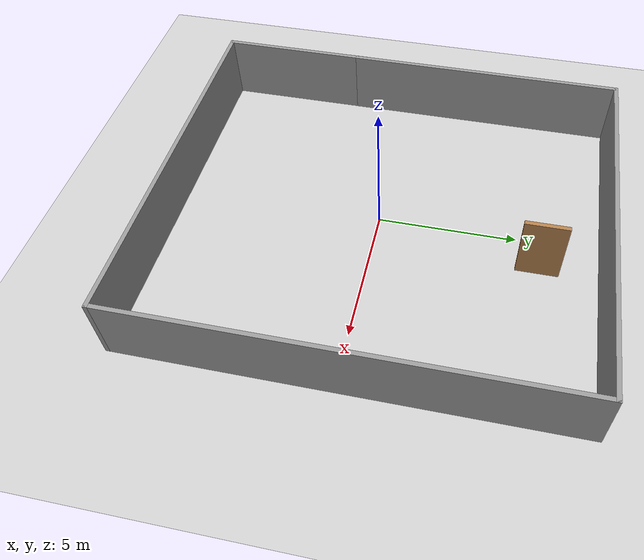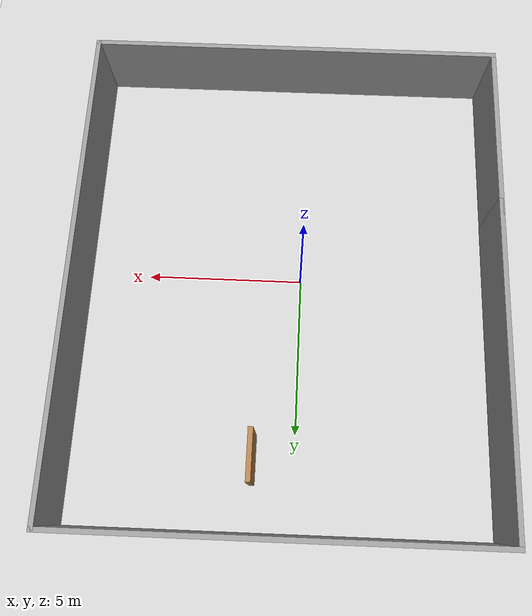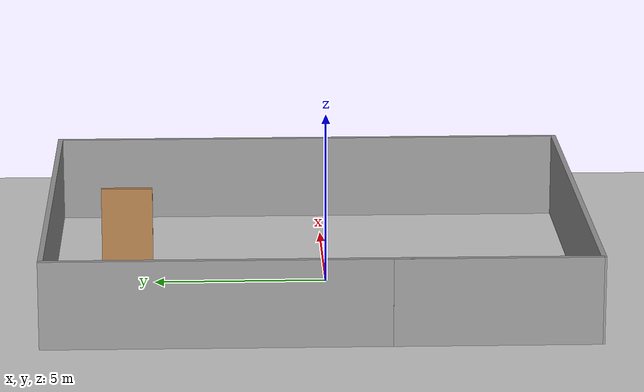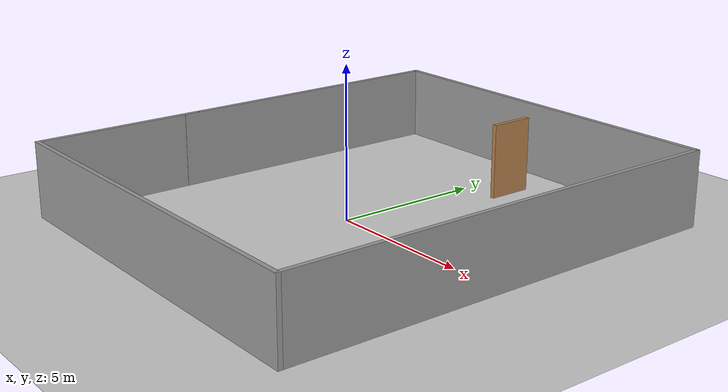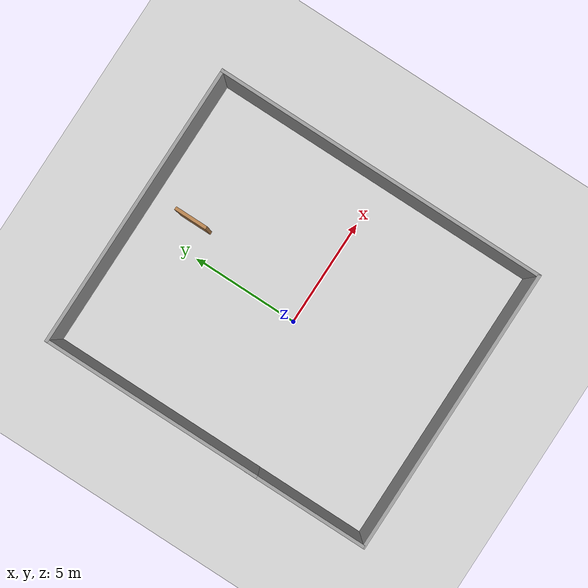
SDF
<sdf version="1.6">
 <world name="default">
  <light name="sun" type="directional">
   <pose>0 0 10 0 -0 0</pose>
   <diffuse>0.8 0.8 0.8 1</diffuse>
   <specular>0.2 0.2 0.2 1</specular>
   <attenuation>
    <range>1000</range>
    <constant>0.9</constant>
    <linear>0.01</linear>
    <quadratic>0.001</quadratic>
   </attenuation>
   <direction>-0.5 0.1 -0.9</direction>
  </light>
  <model name="ground_plane">
   <static>1</static>
   <link name="link">
    <collision name="collision">
     <geometry><plane><normal>0 0 1</normal><size>100 100</size></plane></geometry>
     <surface>
      <contact><collide_bitmask>65535</collide_bitmask></contact>
      <friction><ode><mu>100</mu><mu2>50</mu2></ode></friction>
     </surface>
    </collision>
    <visual name="visual">
     <cast_shadows>0</cast_shadows>
     <geometry><plane><normal>0 0 1</normal><size>100 100</size></plane></geometry>
     <material>
      <script><uri>file://media/materials/scripts/gazebo.material</uri><name>Gazebo/Grey</name></script>
     </material>
    </visual>
   </link>
  </model>
  <gravity>0 0 -9.8</gravity>
  <magnetic_field>6e-06 2.3e-05 -4.2e-05</magnetic_field>
  <atmosphere type="adiabatic"/>
  <physics name="default_physics" default="0" type="ode">
   <max_step_size>0.001</max_step_size>
   <real_time_factor>1</real_time_factor>
   <real_time_update_rate>1000</real_time_update_rate>
  </physics>
  <scene><ambient>0.4 0.4 0.4 1</ambient><background>0.7 0.7 0.7 1</background><shadows>1</shadows></scene>
  <audio><device>default</device></audio>
  <spherical_coordinates>
   <surface_model>EARTH_WGS84</surface_model>
   <latitude_deg>0</latitude_deg>
   <longitude_deg>0</longitude_deg>
   <elevation>0</elevation>
   <heading_deg>0</heading_deg>
  </spherical_coordinates>
  <model name="EmptyRoom">
   <pose>0.454128 0.316383 0 0 -0 0</pose>
   <link name="Wall_18">
    <collision name="Wall_18_Collision">
     <geometry><box><size>5.75 0.15 2.5</size></box></geometry>
     <pose>0 0 1.25 0 -0 0</pose>
    </collision>
    <visual name="Wall_18_Visual">
     <pose>0 0 1.25 0 -0 0</pose>
     <geometry><box><size>5.75 0.15 2.5</size></box></geometry>
     <material>
      <script><uri>file://media/materials/scripts/gazebo.material</uri><name>Gazebo/Grey</name></script>
      <ambient>1 1 1 1</ambient>
     </material>
     <meta><layer>0</layer></meta>
    </visual>
    <pose>-6.55243 -4.81642 0 0 -0 -1.5708</pose>
   </link>
   <link name="Wall_20">
    <collision name="Wall_20_Collision">
     <geometry><box><size>10.25 0.15 2.5</size></box></geometry>
     <pose>0 0 1.25 0 -0 0</pose>
    </collision>
    <visual name="Wall_20_Visual">
     <pose>0 0 1.25 0 -0 0</pose>
     <geometry><box><size>10.25 0.15 2.5</size></box></geometry>
     <material>
      <script><uri>file://media/materials/scripts/gazebo.material</uri><name>Gazebo/Grey</name></script>
      <ambient>1 1 1 1</ambient>
     </material>
     <meta><layer>0</layer></meta>
    </visual>
    <pose>-6.54757 2.625 0 0 -0 1.5708</pose>
   </link>
   <link name="Wall_21">
    <collision name="Wall_21_Collision">
     <geometry><box><size>13.25 0.15 2.5</size></box></geometry>
     <pose>0 0 1.25 0 -0 0</pose>
    </collision>
    <visual name="Wall_21_Visual">
     <pose>0 0 1.25 0 -0 0</pose>
     <geometry><box><size>13.25 0.15 2.5</size></box></geometry>
     <material>
      <script><uri>file://media/materials/scripts/gazebo.material</uri><name>Gazebo/Grey</name></script>
      <ambient>1 1 1 1</ambient>
     </material>
     <meta><layer>0</layer></meta>
    </visual>
    <pose>0.00243 7.675 0 0 -0 0</pose>
   </link>
   <link name="Wall_22">
    <collision name="Wall_22_Collision">
     <geometry><box><size>15.5 0.15 2.5</size></box></geometry>
     <pose>0 0 1.25 0 -0 0</pose>
    </collision>
    <visual name="Wall_22_Visual">
     <pose>0 0 1.25 0 -0 0</pose>
     <geometry><box><size>15.5 0.15 2.5</size></box></geometry>
     <material>
      <script><uri>file://media/materials/scripts/gazebo.material</uri><name>Gazebo/Grey</name></script>
      <ambient>1 1 1 1</ambient>
     </material>
     <meta><layer>0</layer></meta>
    </visual>
    <pose>6.55243 0 0 0 -0 -1.5708</pose>
   </link>
   <link name="Wall_23">
    <collision name="Wall_23_Collision">
     <geometry><box><size>13.25 0.15 2.5</size></box></geometry>
     <pose>0 0 1.25 0 -0 0</pose>
    </collision>
    <visual name="Wall_23_Visual">
     <pose>0 0 1.25 0 -0 0</pose>
     <geometry><box><size>13.25 0.15 2.5</size></box></geometry>
     <material>
      <script><uri>file://media/materials/scripts/gazebo.material</uri><name>Gazebo/Grey</name></script>
      <ambient>1 1 1 1</ambient>
     </material>
     <meta><layer>0</layer></meta>
    </visual>
    <pose>0.00243 -7.675 0 0 -0 3.14159</pose>
   </link>
   <static>1</static>
  </model>
  <model name="wall">
   <pose>1.26764 5.80842 0 0 -0 0</pose>
   <link name="Wall_18">
    <collision name="Wall_18_Collision">
     <geometry><box><size>1.5 0.15 2.5</size></box></geometry>
     <pose>0 0 1.25 0 -0 0</pose>
    </collision>
    <visual name="Wall_18_Visual">
     <pose>0 0 1.25 0 -0 0</pose>
     <geometry><box><size>1.5 0.15 2.5</size></box></geometry>
     <material>
      <script><uri>file://media/materials/scripts/gazebo.material</uri><name>Gazebo/Wood</name></script>
      <ambient>1 1 1 1</ambient>
     </material>
     <meta><layer>0</layer></meta>
    </visual>
    <pose>0 0 0 0 -0 -1.5708</pose>
   </link>
   <static>1</static>
  </model>
 </world>
</sdf>
